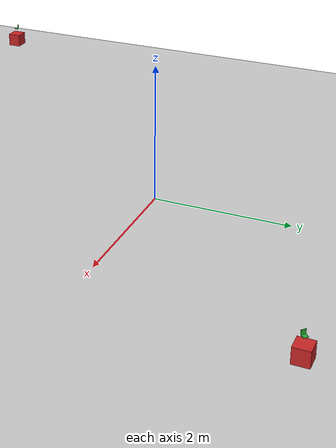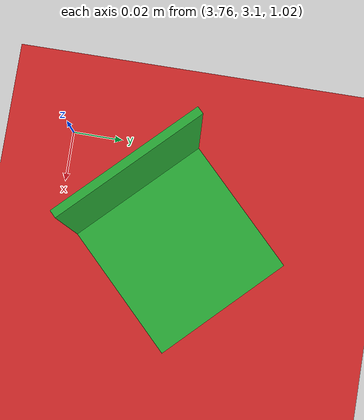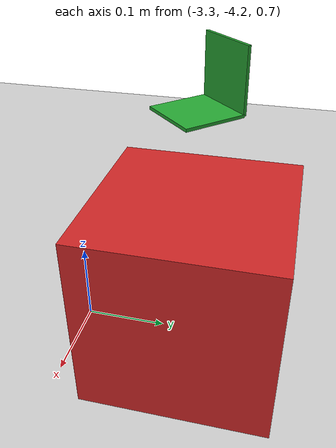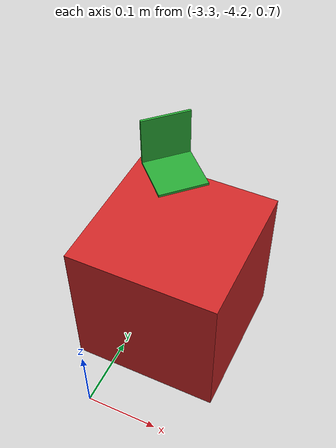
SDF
<sdf version="1.4">
 <world name="default">
  <include><uri>model://ground_plane</uri></include>
  <include><uri>model://sun</uri></include>
  <include><uri>model://distractor_cube</uri><name>dcube1</name><pose>3.8 3.15 0.83 0 0 0</pose></include>
  <include><uri>model://bracket</uri><name>cube1</name><pose>3.8 3.15 1.05 0 0 0.78</pose></include>
  <include><uri>model://distractor_cube</uri><name>dcube2</name><pose>-3.24 -4.05 0.83 0 0 0</pose></include>
  <include><uri>model://bracket</uri><name>cube2</name><pose>-3.24 -4.05 1.05 0 0 -0.78</pose></include>
 </world>
</sdf>

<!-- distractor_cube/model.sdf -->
<sdf version='1.4'>
  <model name="distractor_cube">
      <static>0</static>
      <link name='link'>
        <inertial>
          <mass>0.25</mass>
          <inertia>
            <ixx>0.001</ixx>
            <ixy>0.000000</ixy>
            <ixz>0.000000</ixz>
            <iyy>0.001</iyy>
            <iyz>0.000000</iyz>
            <izz>0.001</izz>
          </inertia>
        </inertial>
        <collision name='collision'>
          <geometry>
            <box>
              <size>0.200 0.200 0.200</size>
            </box>
          </geometry>
          <surface>
            <friction>
              <ode>
                <mu>30.0</mu>
                <mu2>30.0</mu2>
              </ode>
            </friction>
            <contact>
              <ode>
                <kp>1000000.0</kp>
                <kd>100.0</kd>
                <max_vel>1.0</max_vel>
                <min_depth>0.002</min_depth>
              </ode>
            </contact>
          </surface>
        </collision>
        <visual name='visual'>
          <geometry>
            <box>
              <size>0.200 0.200 0.200</size>
            </box>
          </geometry>
          <material>
            <script>
              <uri>file://media/materials/scripts/gazebo.material</uri>
              <name>Gazebo/Red</name>
            </script>
          </material>
        </visual>
        <velocity_decay>
          <linear>0.000000</linear>
          <angular>0.000000</angular>
        </velocity_decay>
        <self_collide>0</self_collide>
        <kinematic>0</kinematic>
        <gravity>0</gravity>
      </link>
  </model>
</sdf>

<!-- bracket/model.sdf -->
<sdf version='1.4'>
  <model name="bracket">
      <static>0</static>
      <link name='link'>
        <inertial>
          <mass>0.25</mass>
          <inertia>
            <ixx>0.001</ixx>
            <ixy>0.000000</ixy>
            <ixz>0.000000</ixz>
            <iyy>0.001</iyy>
            <iyz>0.000000</iyz>
            <izz>0.001</izz>
          </inertia>
        </inertial>
        <collision name='collision1'>
          <pose>-0.035 0 0 0 0 0</pose>
          <geometry>
            <box>
              <size>0.003 0.070 0.070</size>
            </box>
          </geometry>
          <surface>
            <friction>
              <ode>
                <mu>30.0</mu>
                <mu2>30.0</mu2>
              </ode>
            </friction>
            <contact>
              <ode>
                <kp>1000000.0</kp>
                <kd>100.0</kd>
                <max_vel>1.0</max_vel>
                <min_depth>0.002</min_depth>
              </ode>
            </contact>
          </surface>
        </collision>
        <collision name='collision2'>
          <pose>0 0 -0.035 0 0 0</pose>
          <geometry>
            <box>
              <size>0.070 0.070 0.003</size>
            </box>
          </geometry>
          <surface>
            <friction>
              <ode>
                <mu>30.0</mu>
                <mu2>30.0</mu2>
              </ode>
            </friction>
            <contact>
              <ode>
                <kp>1000000.0</kp>
                <kd>100.0</kd>
                <max_vel>1.0</max_vel>
                <min_depth>0.002</min_depth>
              </ode>
            </contact>
          </surface>
        </collision>
        <visual name='visual1'>
          <pose>-0.030 0 0 0 0 0</pose>
          <geometry>
            <box>
              <size>0.003 0.060 0.060</size>
            </box>
          </geometry>
          <material>
            <script>
              <uri>file://media/materials/scripts/gazebo.material</uri>
              <name>Gazebo/Green</name>
            </script>
          </material>
        </visual>
        <visual name='visual2'>
          <pose>0 0 -0.030 0 0 0</pose>
          <geometry>
            <box>
              <size>0.060 0.060 0.003</size>
            </box>
          </geometry>
          <material>
            <script>
              <uri>file://media/materials/scripts/gazebo.material</uri>
              <name>Gazebo/Green</name>
            </script>
          </material>
        </visual>
        <velocity_decay>
          <linear>0.000000</linear>
          <angular>0.000000</angular>
        </velocity_decay>
        <self_collide>0</self_collide>
        <kinematic>0</kinematic>
        <gravity>1</gravity>
      </link>
  </model>
</sdf>
